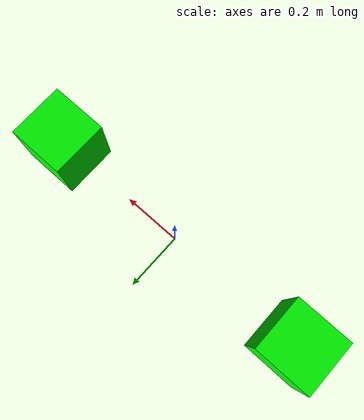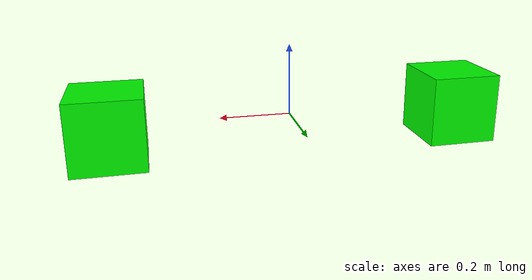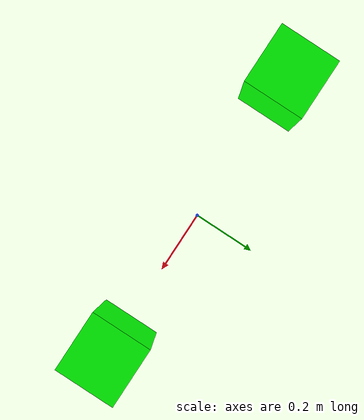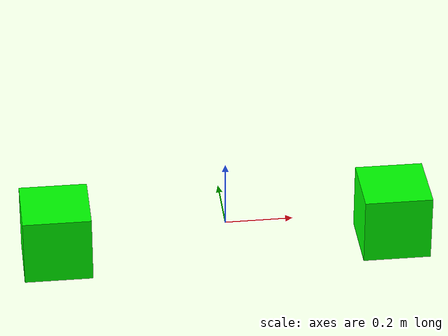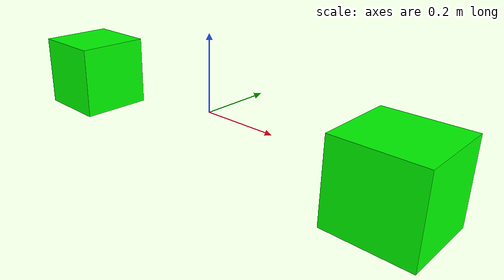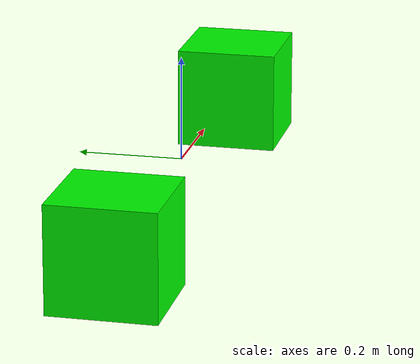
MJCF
<mujoco model="green squares">
  <compiler angle="radian" autolimits="true" />
  <asset>
    <texture type="2d" name="green" builtin="flat" width="1" height="1" rgb1="0 1 0"/>
    <material name="green" texture="green" rgba="1 1 1 1"/>
  </asset>
  <worldbody>
    <body name="square1" pos="-0.5 0 0">
      <geom size="0.1" rgba="0 1 0 1" type="box" />
    </body>
    <body name="square2" pos="0.5 0 0">
      <geom size="0.1" rgba="0 1 0 1" type="box" />
    </body>
  </worldbody>
</mujoco>
